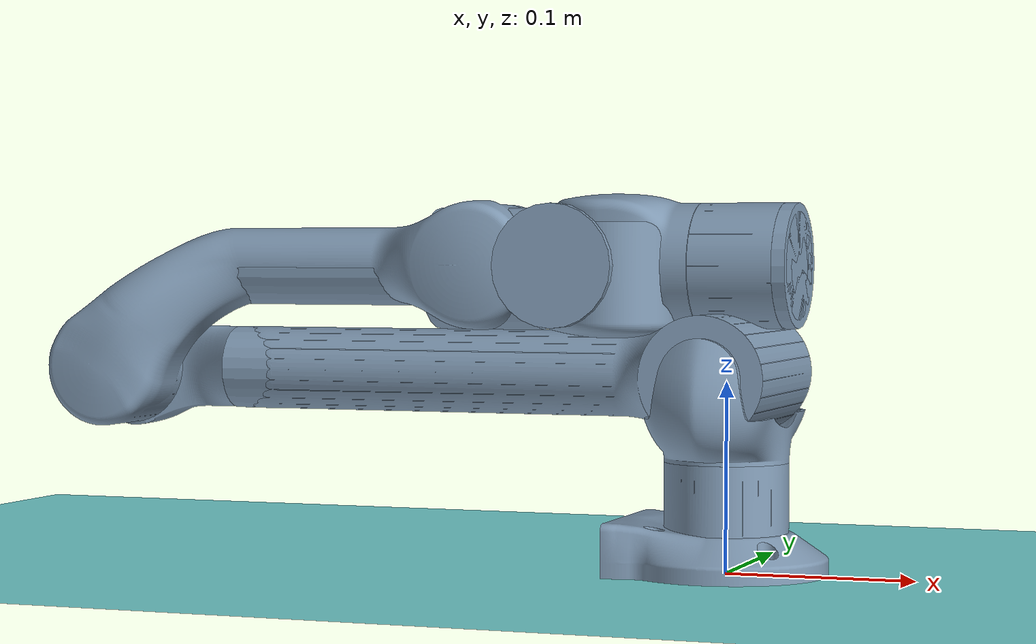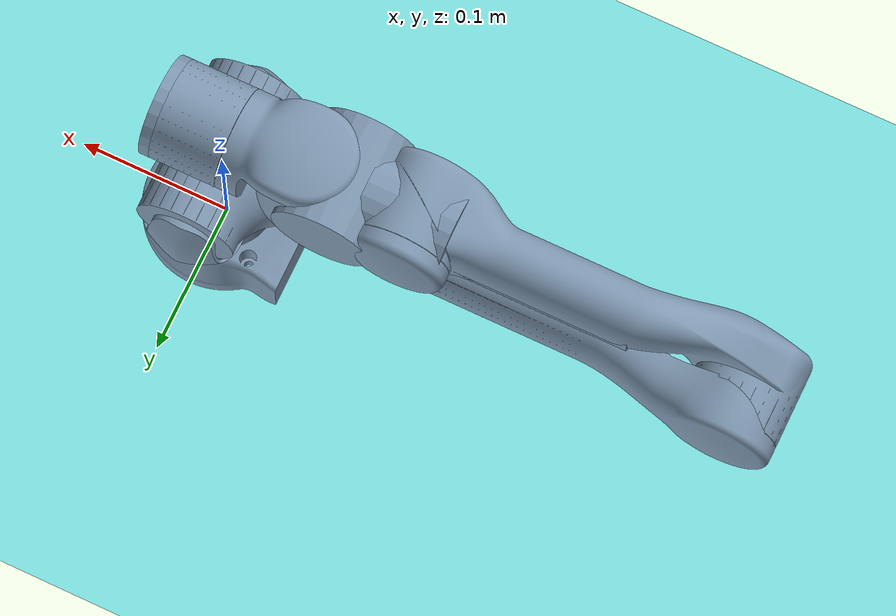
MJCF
<mujoco model="z1_description">
    <compiler angle="radian" meshdir="../meshes/" />
    <size njmax="500" nconmax="100" />
<option gravity='0 0 -9.806' iterations='50' solver='Newton' timestep='0.002'/>

<default>
    <geom contype="1" conaffinity="1" friction="0.6 0.3 0.3" rgba="0.5 0.6 0.7 1" margin="0.001" group="0"/>

    <light castshadow="false" diffuse="1 1 1"/>
    <motor ctrlrange="-33.5 33.5" ctrllimited="true"/>
    <camera fovy="60"/>
    <joint damping="0.01" armature="0.01"/>

</default>
    <asset>
        <mesh name="z1_Link00" file="z1_Link00.stl" />
        <mesh name="z1_Link01" file="z1_Link01.stl" />
        <mesh name="z1_Link02" file="z1_Link02.stl" />
        <mesh name="z1_Link03" file="z1_Link03.stl" />
        <mesh name="z1_Link04" file="z1_Link04.stl" />
        <mesh name="z1_Link05" file="z1_Link05.stl" />
        <mesh name="z1_Link06" file="z1_Link06.stl" />
    </asset>
<asset>
    <texture type="skybox" builtin="gradient" rgb1="1.0 1.0 1.0" rgb2="1.0 1.0 1.0" width="512" height="512"/>
    <texture name="plane" type="2d" builtin="flat" rgb1="1 1 1" rgb2="1 1 1" width="512" height="512" mark="cross" markrgb="0 0 0"/>
    <material name="plane" reflectance="0.0" texture="plane" texrepeat="3 3" texuniform="true"/>
</asset>
    <worldbody>
    <light directional="true" diffuse=".8 .8 .8" pos="0 0 10" dir="0 0 -10"/>
<camera name="track" mode="trackcom" pos="0 -1.3 1.6" xyaxes="1 0 0 0 0.707 0.707"/>
<geom name='floor' type='plane' conaffinity='1' condim='3' contype='1' rgba="0.5 0.9 0.9 0.1" material='plane' pos='0 0 0' size='0 0 1'/>

        <geom type="mesh" contype="0" conaffinity="0" group="1" mesh="z1_Link00" />
        <geom size="0.0325 0.0255" pos="0 0 0.0255" type="cylinder" />
        <body name="link01" pos="0 0 0.0585">
            <inertial pos="2.47e-06 -0.00025198 0.0231717" quat="0.705633 0.708578 -0.000280458 0.000356448" mass="0.673326" diaginertia="0.00128328 0.000839362 0.000719308" />
            <joint name="joint1" pos="0 0 0" axis="0 0 1" limited="true" range="-2.61799 2.61799" damping="1" frictionloss="1" />
            <geom type="mesh" contype="0" conaffinity="0" group="1" mesh="z1_Link01" />
            <body name="link02" pos="0 0 0.045">
                <inertial pos="-0.110126 0.00240029 0.00158266" quat="-0.00720473 0.706934 0.0117222 0.707146" mass="1.19132" diaginertia="0.0246612 0.0243113 0.00100468" />
                <joint name="joint2" pos="0 0 0" axis="0 1 0" limited="true" range="0 3.14159" damping="2" frictionloss="2" />
                <geom type="mesh" contype="0" conaffinity="0" group="1" mesh="z1_Link02" />
                <geom size="0.0325 0.051" quat="0.707107 0.707107 0 0" type="cylinder" />
                <geom size="0.0225 0.1175" pos="-0.1625 0 0" quat="0.707107 0 0.707107 0" type="cylinder" />
                <geom size="0.0325 0.0255" pos="-0.35 0 0" quat="0.707107 0.707107 0 0" type="cylinder" />
                <body name="link03" pos="-0.35 0 0">
                    <inertial pos="0.106092 -0.00541815 0.0347638" quat="0.390759 0.613535 0.495032 0.475211" mass="0.839409" diaginertia="0.00955021 0.00938044 0.000558553" />
                    <joint name="joint3" pos="0 0 0" axis="0 1 0" limited="true" range="-4.7822 0" damping="1" frictionloss="1" />
                    <geom type="mesh" contype="0" conaffinity="0" group="1" mesh="z1_Link03" />
                    <geom size="0.02 0.058" pos="0.128 0 0.055" quat="0.707107 0 0.707107 0" type="cylinder" />
                    <geom size="0.0325 0.0295" pos="0.2205 0 0.055" quat="0.707107 0 0.707107 0" type="cylinder" />
                    <body name="link04" pos="0.218 0 0.057">
                        <inertial pos="0.0436668 0.00364738 -0.00170192" quat="0.0441445 0.67379 0.128937 0.726246" mass="0.564046" diaginertia="0.000984312 0.00093769 0.000302838" />
                        <joint name="joint4" pos="0 0 0" axis="0 1 0" limited="true" range="-1.74533 1.5708" damping="1" frictionloss="1" />
                        <geom type="mesh" contype="0" conaffinity="0" group="1" mesh="z1_Link04" />
                        <geom size="0.0325 0.0365" pos="0.0472 0 0" quat="0.707107 0.707107 0 0" type="cylinder" />
                        <body name="link05" pos="0.07 0 0">
                            <inertial pos="0.0312153 0 0.00646316" quat="0.531936 0.464048 0.457086 0.541088" mass="0.389385" diaginertia="0.000558963 0.000547314 0.000167332" />
                            <joint name="joint5" pos="0 0 0" axis="0 0 1" limited="true" range="-1.72788 1.72788" damping="1" frictionloss="1" />
                            <geom type="mesh" contype="0" conaffinity="0" group="1" mesh="z1_Link05" />
                            <body name="link06" pos="0.0492 0 0">
                                <inertial pos="0.0241569 -0.00017355 -0.00143876" quat="0.997266 -0.0715433 0.00854786 -0.0164304" mass="0.288758" diaginertia="0.000183329 0.000147473 0.000146778" />
                                <joint name="joint6" pos="0 0 0" axis="1 0 0" limited="true" range="-2.79253 2.79253" damping="1" frictionloss="1" />
                                <geom type="mesh" contype="0" conaffinity="0" group="1" mesh="z1_Link06" />
                                <geom size="0.0325 0.0255" pos="0.0255 0 0" quat="0.707107 0 0.707107 0" type="cylinder" />
                            </body>
                        </body>
                    </body>
                </body>
            </body>
        </body>
    </worldbody>
    <actuator>
    <motor name="joint1_motor" joint="joint1" />
    <motor name="joint2_motor" joint="joint2" />
    <motor name="joint3_motor" joint="joint3" />
    <motor name="joint4_motor" joint="joint4" />
    <motor name="joint5_motor" joint="joint5" />
    <motor name="joint6_motor" joint="joint6" />
    </actuator>
</mujoco>
